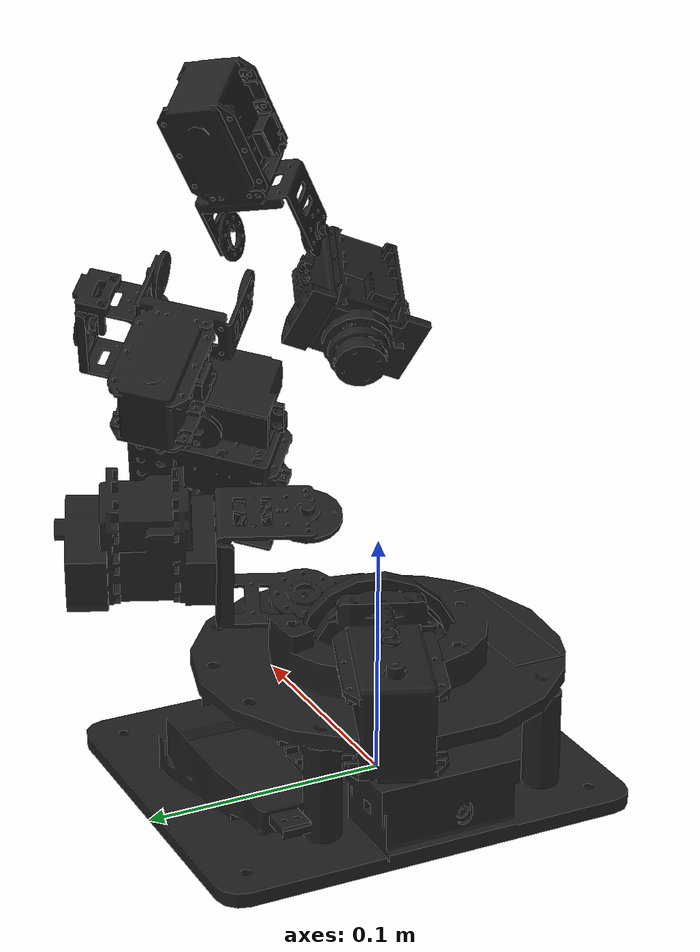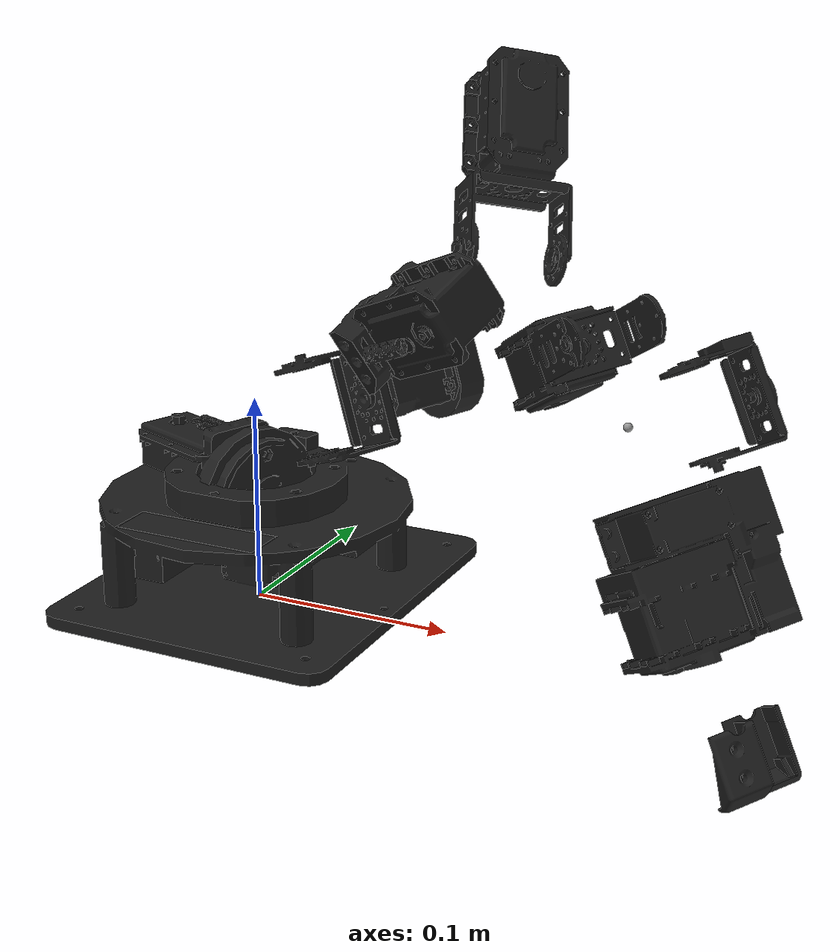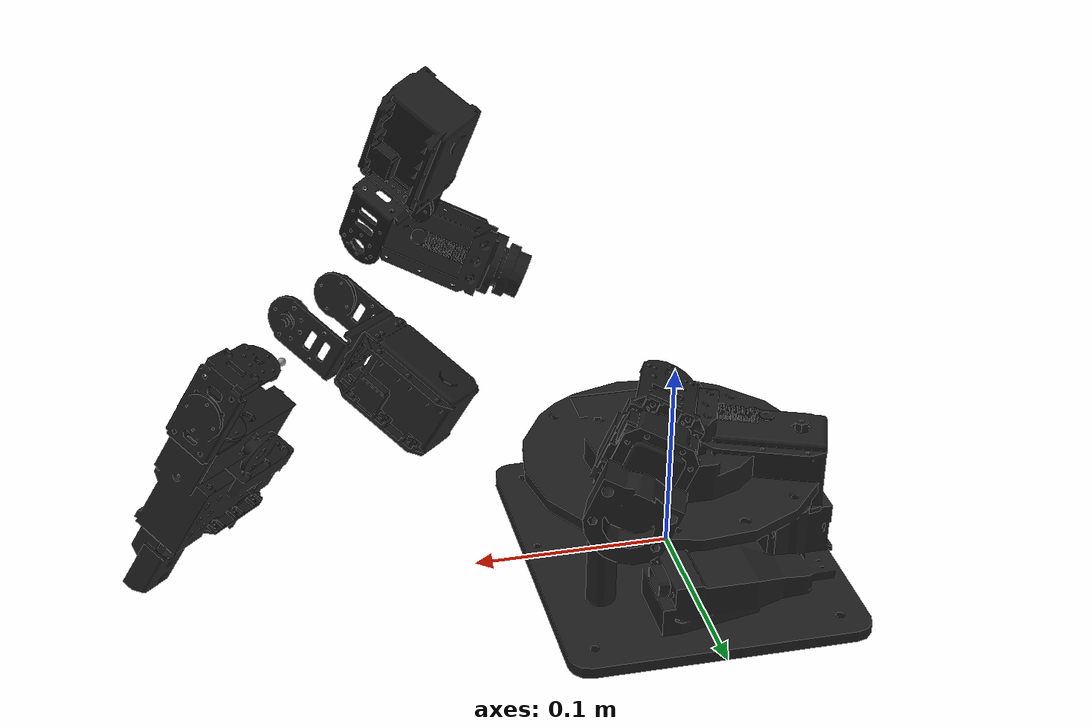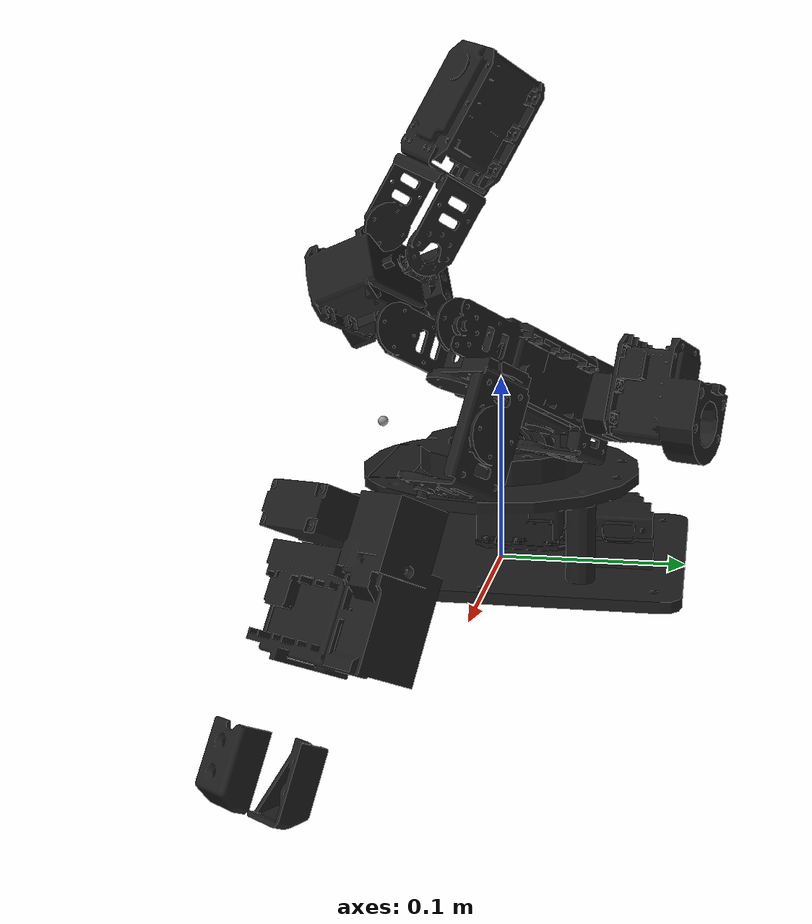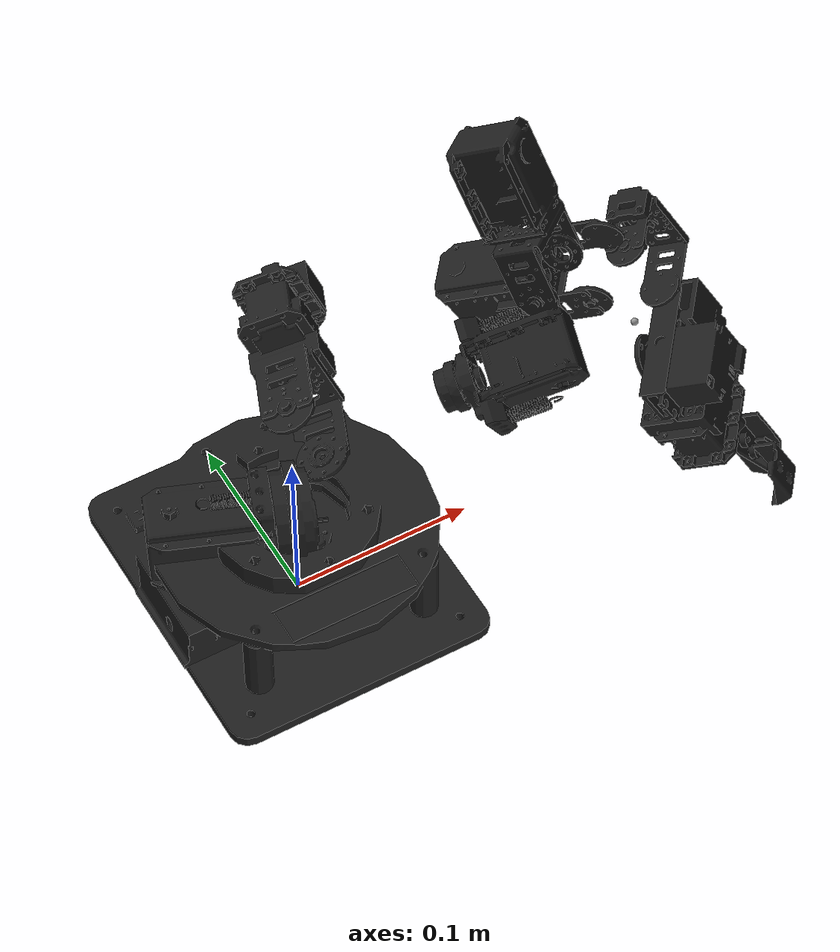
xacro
<?xml version="1.0"?>
<robot xmlns:xacro="http://www.ros.org/wiki/xacro" name="cyton_gamma_300">

	<xacro:include filename="$(find cyton_gamma_300_description)/urdf/cyton_gamma_300.gazebo" />-
	<xacro:include filename="$(find cyton_gamma_300_description)/urdf/materials.xacro" />

	<link name="world"/>

  	<joint name="fixed" type="fixed">
    	<parent link="world"/>
    	<child link="base_footprint"/>
  	</joint>

  	<link name="base_footprint">
        <visual>
            <origin xyz="0 0 0" rpy="0 0 0"/>
            <geometry>
                <sphere radius="0.001" />
            </geometry>
        </visual>
    </link>

    <joint name="base_joint" type="fixed">
        <parent link="base_footprint" />
        <child link="base_link" />
       <origin xyz="0.0 0.0 0.0" rpy="0 0 0" />
    </joint>

    <!-- Base of robot here -->
    <link name="base_link">
        <inertial>
            <origin rpy="0 0 0" xyz="-0.005448 0.010279 0.024284"/>
            <inertia ixx="0.007305" ixy="-0.000051" ixz="-0.000056" iyy="0.006579" iyz="0.000372" izz="0.010933" />
            <mass value="0.901"/>
        </inertial>
        <visual>
            <origin xyz="0 0 0" rpy="0 0 0"/>
            <geometry>
                <mesh filename="package://cyton_gamma_300_description/meshes/gamma_base.dae"/>
            </geometry>
            <material name="black"/>
        </visual>
        <collision>
            <origin xyz="0 0 0" rpy="0 0 0"/>
            <geometry>
                <mesh filename="package://cyton_gamma_300_description/meshes/gamma_base.stl"/>
            </geometry>
        </collision>
    </link>

    <!-- First motor located here -->
    <joint name="shoulder_roll_joint" type="revolute">
        <parent link="base_link" />
        <child link="shoulder_roll" />
        <origin xyz="0 0 0.05315" rpy="0 0 1.2" />
        <limit lower="-2.618" upper="2.618" effort="100.0" velocity="1.0" />
        <axis xyz="0 0 1" />
    </joint>

    <link name="shoulder_roll">
        <inertial>
            <origin rpy="0 0 0" xyz="0.000027 0.026919 -0.000272"/>
            <mass value="0.286"/>
            <inertia ixx="0.000817" ixy="0.000002" ixz="0.000000" iyy="0.000352" iyz="-0.000003" izz="0.000866"/>
        </inertial>
        <visual>
            <origin xyz="0 0 0" rpy="1.5708 0 3.14159"/>
            <geometry>
                <mesh filename="package://cyton_gamma_300_description/meshes/Shoulder_Roll.dae"/>
            </geometry>
            <material name="black"/>
        </visual>
        <collision>
            <origin xyz="0 0 0" rpy="0 0 -1.5708"/>
            <geometry>
                <mesh filename="package://cyton_gamma_300_description/meshes/Shoulder_Roll.stl"/>
            </geometry>
        </collision>
    </link>

    <!-- Second motor located here -->
    <joint name="shoulder_pitch_joint" type="revolute">
        <parent link="shoulder_roll" />
        <child link="shoulder_pitch" />
        <origin xyz="0 0 0.063" rpy="1.2 0 0" />
        <limit lower="-1.8326" upper="1.8326" effort="100.0" velocity="1.0" />
        <axis xyz="1 0 0" />
    </joint>

    <link name="shoulder_pitch">
        <inertial>
            <origin rpy="0 0 0" xyz="-0.057818 -0.000005 -0.020753"/>
            <mass value="0.162"/>
            <inertia ixx="0.000177" ixy="0.000000" ixz="0.000016" iyy="0.000419" iyz="-0.000000" izz="0.000347"/>
        </inertial>
        <visual>
            <origin xyz="0.028 0 0" rpy="0 1.5708 0" />
            <geometry>
                <mesh filename="package://cyton_gamma_300_description/meshes/Shoulder_Pitch.dae"/>
            </geometry>
            <material name="black"/>
        </visual>
        <collision>
            <origin xyz="0.028 0 0" rpy="0 0 -1.5708" />
            <geometry>
                <mesh filename="package://cyton_gamma_300_description/meshes/Shoulder_Pitch.stl"/>
            </geometry>
        </collision>
    </link>

    <!-- Third motor located here -->
    <joint name="elbow_roll_joint" type="revolute">
        <parent link="shoulder_pitch" />
        <child link="elbow_roll" />
        <origin xyz="0 0 0.089" rpy="0 0 1.2" />
        <limit lower="-1.8326" upper="1.8326" effort="100.0" velocity="1.0" />
        <axis xyz="0 0 1" />
    </joint>

    <link name="elbow_roll">
        <inertial>
            <origin rpy="0 0 0" xyz="0.000064 -0.000046 0.032285"/>
            <mass value="0.124"/>
            <inertia ixx="0.000192" ixy="0.000017" ixz="0.000001" iyy="0.000192" iyz="-0.000001" izz="0.000090"/>
        </inertial>
        <visual>
            <origin xyz="0 0 0" rpy="0 0 3.92699" />
            <geometry>
                <mesh filename="package://cyton_gamma_300_description/meshes/Elbow_Roll.dae"/>
            </geometry>
            <material name="black"/>
        </visual>
        <collision>
            <origin xyz="0 0 0" rpy="0 0 1.57" />
            <geometry>
                <mesh filename="package://cyton_gamma_300_description/meshes/Elbow_Roll.stl"/>
            </geometry>
        </collision>
    </link>

    <!-- Fourth motor located here -->
    <joint name="elbow_pitch_joint" type="revolute">
        <parent link="elbow_roll" />
        <child link="elbow_pitch" />
        <origin xyz="0 0 0.052" rpy="1.2 0 0" />
        <limit lower="-1.8326" upper="1.8326" effort="100.0" velocity="1.0" />
        <axis xyz="1 0 0" />
    </joint>

    <link name="elbow_pitch">
        <inertial>
            <origin rpy="0 0 0" xyz="0.000104 0.055008 -0.026105"/>
            <mass value="0.107"/>
            <inertia ixx="0.000176" ixy="0.000001" ixz="0.000000" iyy="0.000075" iyz="0.000003" izz="0.000181"/>
        </inertial>
        <visual>
        <!-- Not sure if this is the correct orientation. -->
            <origin xyz="0.027 0 0" rpy="1.5708 0 1.5708" />
            <geometry>
                <mesh filename="package://cyton_gamma_300_description/meshes/Elbow_Pitch.dae"/>
            </geometry>
            <material name="black"/>
        </visual>
        <collision>
            <origin xyz="0.027 0 0" rpy="0 0 1.57" />
            <geometry>
                <mesh filename="package://cyton_gamma_300_description/meshes/Elbow_Pitch.stl"/>
            </geometry>
        </collision>
    </link>

    <!-- Fifth motor located here -->
    <joint name="elbow_yaw_joint" type="revolute">
        <parent link="elbow_pitch" />
        <child link="elbow_yaw" />
        <origin xyz="0 0 0.072" rpy="0 -1.2 0" />
        <limit lower="-1.8326" upper="1.8326" effort="100.0" velocity="1.0" />
        <axis xyz="0 -1 0" />
    </joint>

    <link name="elbow_yaw">
        <inertial>
            <origin rpy="0 0 0" xyz="0.000103 0.054796 -0.001090"/>
            <mass value="0.107"/>
            <inertia ixx="0.000181" ixy="0.000001" ixz="0.000000" iyy="0.000076" iyz="0.000001" izz="0.000186"/>
        </inertial>
        <visual>
            <origin xyz="0 0 0" rpy="1.5708 0 0" />
            <geometry>
                <mesh filename="package://cyton_gamma_300_description/meshes/Elbow_Yaw.dae"/>
            </geometry>
            <material name="black"/>
        </visual>
        <collision>
            <origin xyz="0 0 0" rpy="0 0 1.57" />
            <geometry>
                <mesh filename="package://cyton_gamma_300_description/meshes/Elbow_Yaw.stl"/>
            </geometry>
        </collision>
    </link>

    <!-- Sixth motor located here -->
    <joint name="wrist_pitch_joint" type="revolute">
        <parent link="elbow_yaw" />
        <child link="wrist_pitch" />
        <origin rpy="1.5708 0 1.5708" xyz="0.0263 0 0.070"/>
        <limit lower="-1.8326" upper="1.8326" effort="100.0" velocity="1.0" />
        <axis xyz="0 0 1"/>
    </joint>

    <link name="wrist_pitch">
        <inertial>
            <origin rpy="0 0 0" xyz="0.000000 0.017892 -0.029854"/>
            <mass value="0.015"/>
            <inertia ixx="2.64e-005" ixy="-2.04e-013" ixz="3.74e-013" iyy="1.91e-005" iyz="8.46e-006" izz="8.91e-006"/>
            <!--inertia ixx="0.000027" ixy="0.000000" ixz="0.000000" iyy="0.000000" iyz="0.000002" izz="0.000000"/-->
        </inertial>
        <visual>
            <origin rpy="0 0 0" xyz="0 0 0"/>
            <geometry>
                <mesh filename="package://cyton_gamma_300_description/meshes/Wrist_Pitch.dae"/>
            </geometry>
            <material name="black"/>
        </visual>
        <collision>
            <origin xyz="0 0 0" rpy="1.57 0 3.14" />
            <geometry>
                <mesh filename="package://cyton_gamma_300_description/meshes/Wrist_Pitch.stl"/>
            </geometry>
        </collision>
    </link>

    <!-- Seventh motor located here -->
    <joint name="wrist_roll_joint" type="revolute">
        <parent link="wrist_pitch" />
        <child link="wrist_roll" />
        <origin rpy="4.71 0 3.14" xyz="0 0.05 -0.027"/>
        <limit lower="-2.61799" upper="2.61799" effort="100.0" velocity="1.0" />
        <axis xyz="0 0 1" />
    </joint>

    <link name="wrist_roll">
        <inertial>
            <origin rpy="0 0 0" xyz="-0.000704 -0.001866 -0.010629"/>
            <mass value="0.205"/>
            <inertia ixx="0.000519" ixy="0.000004" ixz="0.000021" iyy="0.000308" iyz="0.000014" izz="0.000346"/>
        </inertial>
        <visual>
            <origin rpy="0 0 0" xyz="0 0 0"/>
            <geometry>
                <mesh filename="package://cyton_gamma_300_description/meshes/Wrist_Roll.dae"/>
            </geometry>
            <material name="black"/>
        </visual>
        <collision>
            <origin xyz="0 0 0" rpy="3.14 0 0" />
            <geometry>
                <mesh filename="package://cyton_gamma_300_description/meshes/Wrist_Roll.stl"/>
            </geometry>
        </collision>
    </link>

    <!-- Eighth motor located here -->
    <joint name="gripper_joint" type="prismatic">
        <parent link="wrist_roll" />
        <child link="gripper_finger1" />
        <origin rpy="3.14 0 1.57" xyz="-0.010 -0.010 -0.043"/>
        <limit lower="-0.008" upper="0.008" effort="100.0" velocity="1.0" />
        <axis xyz="1 0 0" />
    </joint>

    <link name="gripper_finger1">
        <inertial>
            <origin rpy="0 0 0" xyz="-0.008938 0.007096 0.020878"/>
            <mass value="0.005"/>
            <inertia ixx="0.000002" ixy="0.000000" ixz="0.000000" iyy="0.000002" iyz="0.000000" izz="0.000001"/>
        </inertial>
        <visual>
            <origin xyz="0 0 0" rpy="0 0 0" />
            <geometry>
                <mesh filename="package://cyton_gamma_300_description/meshes/Gripper_Finger1.dae"/>
            </geometry>
                <material name="black"/>
        </visual>
        <collision>
            <origin xyz="0 0 0" rpy="0 0 1.57"/>
            <geometry>
                <mesh filename="package://cyton_gamma_300_description/meshes/Gripper_Finger1.stl"/>
            </geometry>
        </collision>
    </link>

    <!-- Eighth motor located here -->
    <joint name="gripper_joint2" type="prismatic">
        <parent link="wrist_roll" />
        <child link="gripper_finger2" />
        <origin rpy="3.14 0 1.57" xyz="-0.010 0.010 -0.043"/>
        <limit lower="-0.008" upper="0.008" effort="100.0" velocity="1.0" />
        <mimic joint="gripper_joint" multiplier="-1"/>
        <axis xyz="1 0 0" />
    </joint>

    <link name="gripper_finger2">
        <inertial>
            <origin rpy="0 0 0" xyz="0.008938 0.007097 0.020878"/>
            <mass value="0.005"/>
            <inertia ixx="0.000002" ixy="0.000000" ixz="0.000000" iyy="0.000002" iyz="0.000000" izz="0.000001"/>
        </inertial>
        <visual>
            <origin xyz="0 0 0" rpy="0 0 0" />
            <geometry>
                <mesh filename="package://cyton_gamma_300_description/meshes/Gripper_Finger2.dae"/>
            </geometry>
            <material name="black"/>
        </visual>
        <collision>
            <origin xyz="0 0 0" rpy="0 0 1.57"/>
            <geometry>
                <mesh filename="package://cyton_gamma_300_description/meshes/Gripper_Finger2.stl"/>
            </geometry>
        </collision>
    </link>

    <!-- virtual end-effector -->

    <joint name="virtual_endeffector_joint" type="fixed">
        <parent link="wrist_roll" />
        <child link="virtual_endeffector" />
        <origin xyz="-0.002316 0.0079 0.079425" rpy="0 0 0" />
    </joint>

    <link name="virtual_endeffector">
        <visual>
            <origin xyz="0 0 0" rpy="0 0 0" />
            <geometry>
                <sphere radius="0.002" />
            </geometry>
            <material name="grey"/>
        </visual>
    </link>

    <transmission name="tran1">
    	<type>transmission_interface/SimpleTransmission</type>
    	<joint name="shoulder_roll_joint">
      		<hardwareInterface>EffortJointInterface</hardwareInterface>
    	</joint>
    	<actuator name="motor1">
      		<hardwareInterface>EffortJointInterface</hardwareInterface>
      		<mechanicalReduction>1</mechanicalReduction>
    	</actuator>
  	</transmission>

  	<transmission name="tran2">
    	<type>transmission_interface/SimpleTransmission</type>
    	<joint name="shoulder_pitch_joint">
      		<hardwareInterface>EffortJointInterface</hardwareInterface>
    	</joint>
    	<actuator name="motor2">
      		<hardwareInterface>EffortJointInterface</hardwareInterface>
      		<mechanicalReduction>1</mechanicalReduction>
    	</actuator>
  	</transmission>

  	<transmission name="tran3">
    	<type>transmission_interface/SimpleTransmission</type>
    	<joint name="elbow_roll_joint">
    	  	<hardwareInterface>EffortJointInterface</hardwareInterface>
    	</joint>
    	<actuator name="motor3">
      		<hardwareInterface>EffortJointInterface</hardwareInterface>
      		<mechanicalReduction>1</mechanicalReduction>
    	</actuator>
  	</transmission>

  	<transmission name="tran4">
    	<type>transmission_interface/SimpleTransmission</type>
    	<joint name="elbow_pitch_joint">
      		<hardwareInterface>EffortJointInterface</hardwareInterface>
    	</joint>
    	<actuator name="motor4">
      		<hardwareInterface>EffortJointInterface</hardwareInterface>
      		<mechanicalReduction>1</mechanicalReduction>
    	</actuator>
  	</transmission>

  	<transmission name="tran5">
    	<type>transmission_interface/SimpleTransmission</type>
    	<joint name="elbow_yaw_joint">
      		<hardwareInterface>EffortJointInterface</hardwareInterface>
    	</joint>
    	<actuator name="motor5">
      		<hardwareInterface>EffortJointInterface</hardwareInterface>
      		<mechanicalReduction>1</mechanicalReduction>
    	</actuator>
  	</transmission>

  	<transmission name="tran6">
    	<type>transmission_interface/SimpleTransmission</type>
    	<joint name="wrist_pitch_joint">
      		<hardwareInterface>EffortJointInterface</hardwareInterface>
    	</joint>
    	<actuator name="motor6">
      		<hardwareInterface>EffortJointInterface</hardwareInterface>
      		<mechanicalReduction>1</mechanicalReduction>
    	</actuator>
  	</transmission>

  	<transmission name="tran7">
    	<type>transmission_interface/SimpleTransmission</type>
    	<joint name="wrist_roll_joint">
    	  	<hardwareInterface>EffortJointInterface</hardwareInterface>
    	</joint>
    	<actuator name="motor7">
      		<hardwareInterface>EffortJointInterface</hardwareInterface>
      		<mechanicalReduction>1</mechanicalReduction>
    	</actuator>
  	</transmission>

  	<transmission name="tran8">
    	<type>transmission_interface/SimpleTransmission</type>
    	<joint name="gripper_joint">
      		<hardwareInterface>EffortJointInterface</hardwareInterface>
    	</joint>
    	<actuator name="motor8">
      		<hardwareInterface>EffortJointInterface</hardwareInterface>
      		<mechanicalReduction>1</mechanicalReduction>
    	</actuator>
  	</transmission>
</robot>
